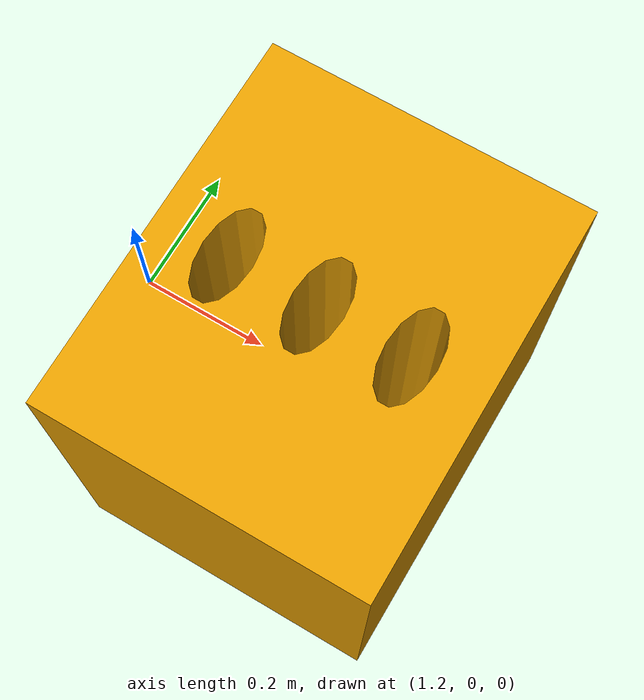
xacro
<?xml version="1.0"?>
<!-- Revolute-Revolute Manipulator -->
<robot name="traffic_cone" xmlns:xacro="http://www.ros.org/wiki/xacro">

  <!-- Constants for robot dimensions -->
  <xacro:property name="PI" value="3.1415926535897931"/>

  <!-- Import all Gazebo-customization elements, including Gazebo colors -->

  <xacro:include filename="$(find sss_simulation)/urdf/materials.xacro" />

    <xacro:macro name="inertial_matrix" params="mass">
               <inertial>
                       <mass value="${mass}" />
                       <inertia ixx="1." ixy="0.0" ixz="0.0"
                                iyy="1." iyz="0.0"
                                izz="1." />
               </inertial>
    </xacro:macro>

  <!-- Base Link -->
  <link name="traffic_cone">
    <visual name="visual">
      <origin xyz="1.5 0 0" rpy="0 0 0"/>
      <geometry>
        <mesh filename="$(find sss_simulation)/meshes/brick.dae" scale="5 10 20"/>
      </geometry>
    </visual>
    <collision name="collision">
    <origin xyz="0 0 0" rpy="0 0 0"/>
      <geometry>
	<mesh filename="$(find sss_simulation)/meshes/brick.dae"  scale="5 10 20"/>
	<scale>0.01 0.01 0.01</scale>
      </geometry>
    </collision>
    <inertial>
      <mass value="1e-5" />
      <inertia ixx="1e-6" ixy="0" ixz="0" iyy="1e-6" iyz="0" izz="1e-6" />
    </inertial>
</link>

</robot>
